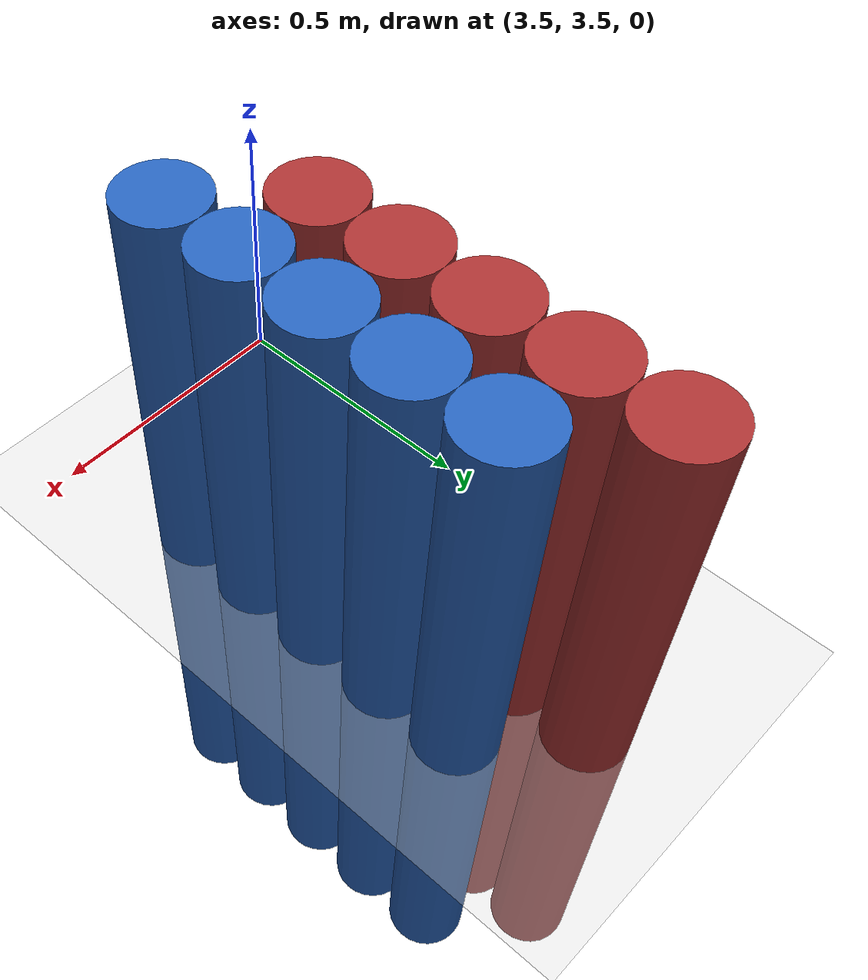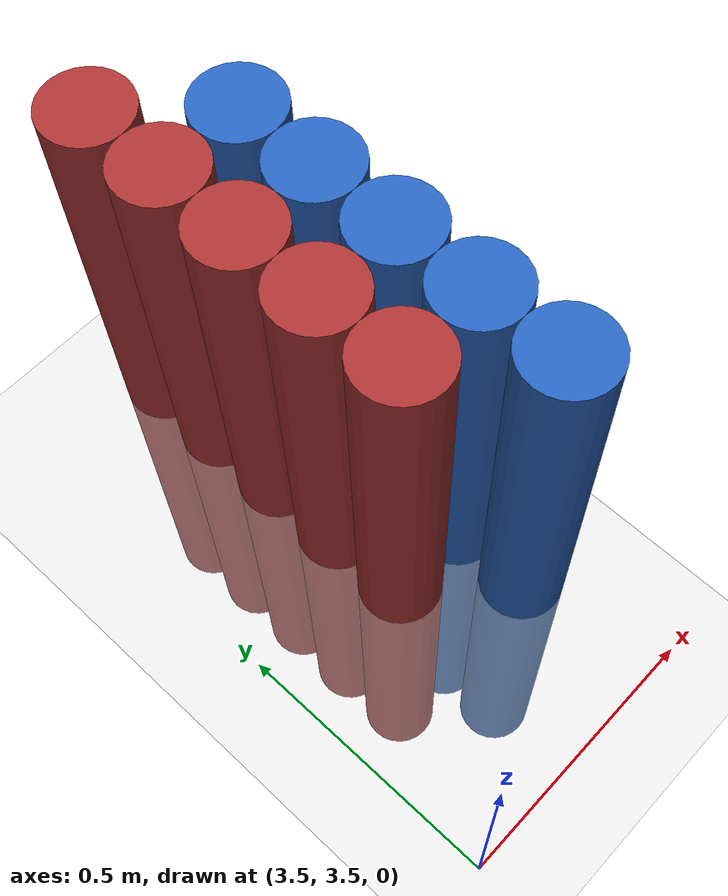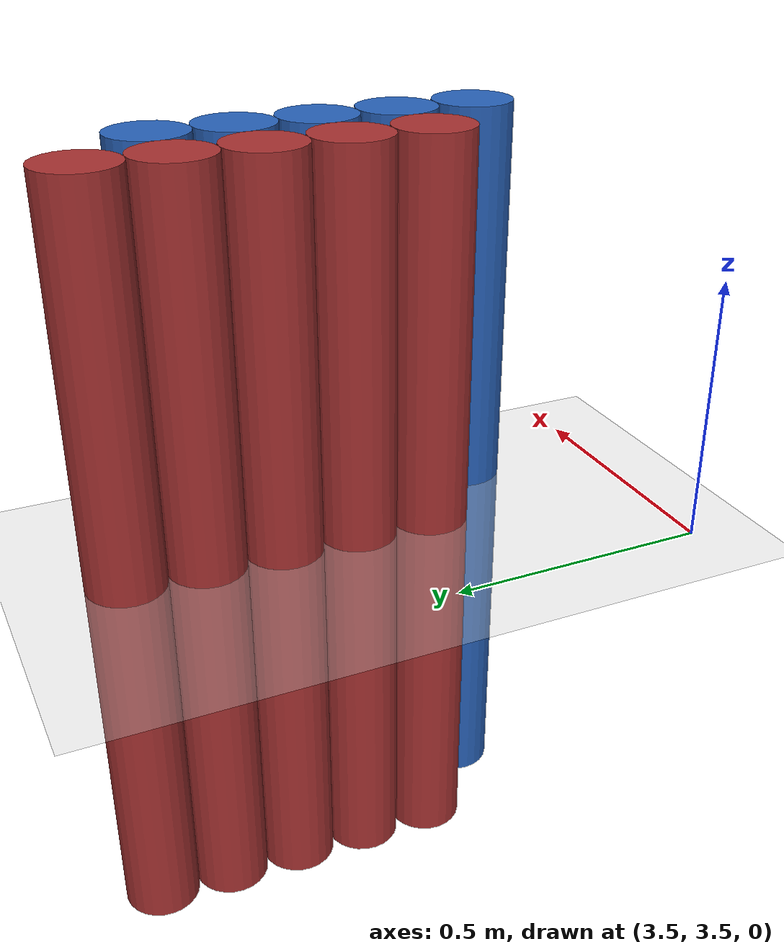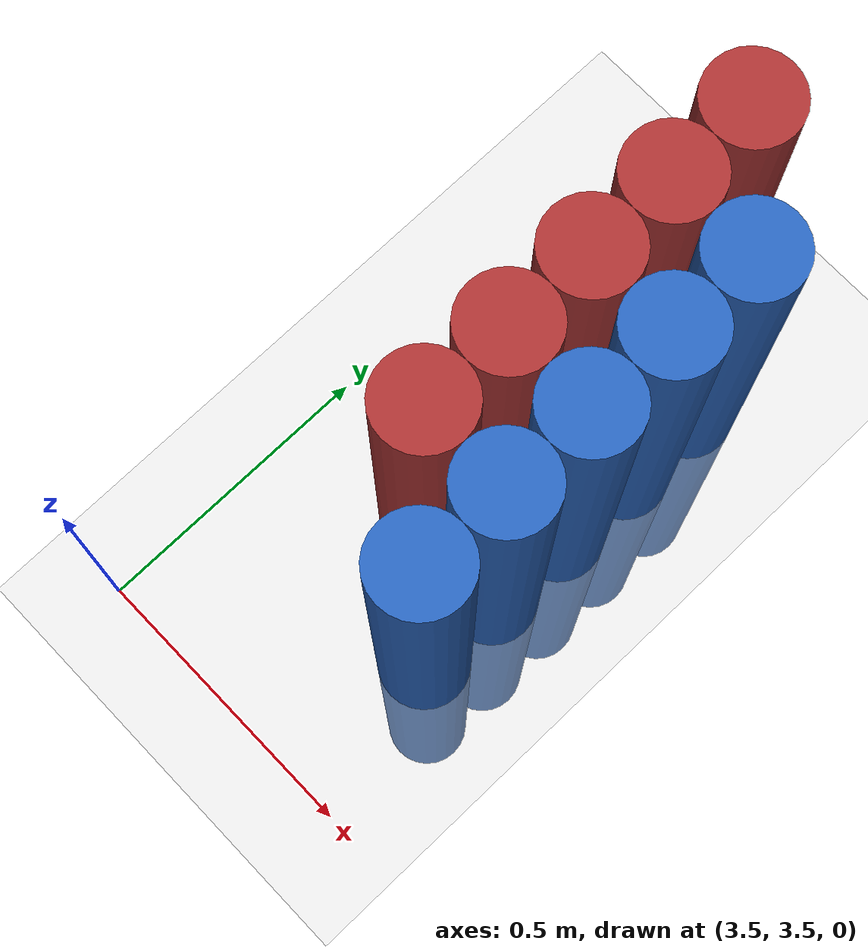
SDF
<sdf version="1.6">
 <world name="default">
  <model name="ground_plane">
   <static>1</static>
   <link name="link">
    <collision name="collision">
     <geometry><plane><normal>0 0 1</normal><size>100 100</size></plane></geometry>
     <surface><friction><ode><mu>100</mu><mu2>50</mu2></ode></friction></surface>
    </collision>
    <visual name="visual">
     <cast_shadows>0</cast_shadows>
     <geometry><plane><normal>0 0 1</normal><size>100 100</size></plane></geometry>
     <material>
      <script><uri>file://media/materials/scripts/gazebo.material</uri><name>Gazebo/Grey</name></script>
     </material>
    </visual>
   </link>
  </model>
  <model name="unit_cylinder_166">
   <static>1</static>
   <pose>3.925000 3.925000 0.000000 0.000000 0.000000 0.000000</pose>
   <link name="link">
    <inertial>
     <mass>1</mass>
     <inertia><ixx>0.145833</ixx><ixy>0</ixy><ixz>0</ixz><iyy>0.145833</iyy><iyz>0</iyz><izz>0.125</izz></inertia>
    </inertial>
    <collision name="collision">
     <geometry><cylinder><radius>0.075000</radius><length>1.5</length></cylinder></geometry>
    </collision>
    <visual name="visual">
     <geometry><cylinder><radius>0.075000</radius><length>1.5</length></cylinder></geometry>
     <material>
      <ambient>0.152000 0.379000 0.720000 1</ambient>
      <diffuse>0.152000 0.379000 0.720000 1</diffuse>
     </material>
     <material>
      <script><name>Gazebo/Grey</name><uri>file://media/materials/scripts/gazebo.material</uri></script>
     </material>
    </visual>
   </link>
  </model>
  <model name="unit_cylinder_168">
   <static>1</static>
   <pose>3.925000 4.075000 0.000000 0.000000 0.000000 0.000000</pose>
   <link name="link">
    <inertial>
     <mass>1</mass>
     <inertia><ixx>0.145833</ixx><ixy>0</ixy><ixz>0</ixz><iyy>0.145833</iyy><iyz>0</iyz><izz>0.125</izz></inertia>
    </inertial>
    <collision name="collision">
     <geometry><cylinder><radius>0.075000</radius><length>1.5</length></cylinder></geometry>
    </collision>
    <visual name="visual">
     <geometry><cylinder><radius>0.075000</radius><length>1.5</length></cylinder></geometry>
     <material>
      <ambient>0.152000 0.379000 0.720000 1</ambient>
      <diffuse>0.152000 0.379000 0.720000 1</diffuse>
     </material>
     <material>
      <script><name>Gazebo/Grey</name><uri>file://media/materials/scripts/gazebo.material</uri></script>
     </material>
    </visual>
   </link>
  </model>
  <model name="unit_cylinder_170">
   <static>1</static>
   <pose>3.925000 4.225000 0.000000 0.000000 0.000000 0.000000</pose>
   <link name="link">
    <inertial>
     <mass>1</mass>
     <inertia><ixx>0.145833</ixx><ixy>0</ixy><ixz>0</ixz><iyy>0.145833</iyy><iyz>0</iyz><izz>0.125</izz></inertia>
    </inertial>
    <collision name="collision">
     <geometry><cylinder><radius>0.075000</radius><length>1.5</length></cylinder></geometry>
    </collision>
    <visual name="visual">
     <geometry><cylinder><radius>0.075000</radius><length>1.5</length></cylinder></geometry>
     <material>
      <ambient>0.152000 0.379000 0.720000 1</ambient>
      <diffuse>0.152000 0.379000 0.720000 1</diffuse>
     </material>
     <material>
      <script><name>Gazebo/Grey</name><uri>file://media/materials/scripts/gazebo.material</uri></script>
     </material>
    </visual>
   </link>
  </model>
  <model name="unit_cylinder_172">
   <static>1</static>
   <pose>3.925000 4.375000 0.000000 0.000000 0.000000 0.000000</pose>
   <link name="link">
    <inertial>
     <mass>1</mass>
     <inertia><ixx>0.145833</ixx><ixy>0</ixy><ixz>0</ixz><iyy>0.145833</iyy><iyz>0</iyz><izz>0.125</izz></inertia>
    </inertial>
    <collision name="collision">
     <geometry><cylinder><radius>0.075000</radius><length>1.5</length></cylinder></geometry>
    </collision>
    <visual name="visual">
     <geometry><cylinder><radius>0.075000</radius><length>1.5</length></cylinder></geometry>
     <material>
      <ambient>0.152000 0.379000 0.720000 1</ambient>
      <diffuse>0.152000 0.379000 0.720000 1</diffuse>
     </material>
     <material>
      <script><name>Gazebo/Grey</name><uri>file://media/materials/scripts/gazebo.material</uri></script>
     </material>
    </visual>
   </link>
  </model>
  <model name="unit_cylinder_377">
   <static>1</static>
   <pose>3.775000 3.925000 0.000000 0.000000 0.000000 0.000000</pose>
   <link name="link">
    <inertial>
     <mass>1</mass>
     <inertia><ixx>0.145833</ixx><ixy>0</ixy><ixz>0</ixz><iyy>0.145833</iyy><iyz>0</iyz><izz>0.125</izz></inertia>
    </inertial>
    <collision name="collision">
     <geometry><cylinder><radius>0.075000</radius><length>1.5</length></cylinder></geometry>
    </collision>
    <visual name="visual">
     <geometry><cylinder><radius>0.075000</radius><length>1.5</length></cylinder></geometry>
     <material>
      <ambient>0.648000 0.192000 0.192000 1</ambient>
      <diffuse>0.648000 0.192000 0.192000 1</diffuse>
     </material>
     <material>
      <script><name>Gazebo/Grey</name><uri>file://media/materials/scripts/gazebo.material</uri></script>
     </material>
    </visual>
   </link>
  </model>
  <model name="unit_cylinder_378">
   <static>1</static>
   <pose>3.775000 4.075000 0.000000 0.000000 0.000000 0.000000</pose>
   <link name="link">
    <inertial>
     <mass>1</mass>
     <inertia><ixx>0.145833</ixx><ixy>0</ixy><ixz>0</ixz><iyy>0.145833</iyy><iyz>0</iyz><izz>0.125</izz></inertia>
    </inertial>
    <collision name="collision">
     <geometry><cylinder><radius>0.075000</radius><length>1.5</length></cylinder></geometry>
    </collision>
    <visual name="visual">
     <geometry><cylinder><radius>0.075000</radius><length>1.5</length></cylinder></geometry>
     <material>
      <ambient>0.648000 0.192000 0.192000 1</ambient>
      <diffuse>0.648000 0.192000 0.192000 1</diffuse>
     </material>
     <material>
      <script><name>Gazebo/Grey</name><uri>file://media/materials/scripts/gazebo.material</uri></script>
     </material>
    </visual>
   </link>
  </model>
  <model name="unit_cylinder_379">
   <static>1</static>
   <pose>3.775000 4.225000 0.000000 0.000000 0.000000 0.000000</pose>
   <link name="link">
    <inertial>
     <mass>1</mass>
     <inertia><ixx>0.145833</ixx><ixy>0</ixy><ixz>0</ixz><iyy>0.145833</iyy><iyz>0</iyz><izz>0.125</izz></inertia>
    </inertial>
    <collision name="collision">
     <geometry><cylinder><radius>0.075000</radius><length>1.5</length></cylinder></geometry>
    </collision>
    <visual name="visual">
     <geometry><cylinder><radius>0.075000</radius><length>1.5</length></cylinder></geometry>
     <material>
      <ambient>0.648000 0.192000 0.192000 1</ambient>
      <diffuse>0.648000 0.192000 0.192000 1</diffuse>
     </material>
     <material>
      <script><name>Gazebo/Grey</name><uri>file://media/materials/scripts/gazebo.material</uri></script>
     </material>
    </visual>
   </link>
  </model>
  <model name="unit_cylinder_380">
   <static>1</static>
   <pose>3.775000 4.375000 0.000000 0.000000 0.000000 0.000000</pose>
   <link name="link">
    <inertial>
     <mass>1</mass>
     <inertia><ixx>0.145833</ixx><ixy>0</ixy><ixz>0</ixz><iyy>0.145833</iyy><iyz>0</iyz><izz>0.125</izz></inertia>
    </inertial>
    <collision name="collision">
     <geometry><cylinder><radius>0.075000</radius><length>1.5</length></cylinder></geometry>
    </collision>
    <visual name="visual">
     <geometry><cylinder><radius>0.075000</radius><length>1.5</length></cylinder></geometry>
     <material>
      <ambient>0.648000 0.192000 0.192000 1</ambient>
      <diffuse>0.648000 0.192000 0.192000 1</diffuse>
     </material>
     <material>
      <script><name>Gazebo/Grey</name><uri>file://media/materials/scripts/gazebo.material</uri></script>
     </material>
    </visual>
   </link>
  </model>
  <model name="unit_cylinder_381">
   <static>1</static>
   <pose>3.775000 4.525000 0.000000 0.000000 0.000000 0.000000</pose>
   <link name="link">
    <inertial>
     <mass>1</mass>
     <inertia><ixx>0.145833</ixx><ixy>0</ixy><ixz>0</ixz><iyy>0.145833</iyy><iyz>0</iyz><izz>0.125</izz></inertia>
    </inertial>
    <collision name="collision">
     <geometry><cylinder><radius>0.075000</radius><length>1.5</length></cylinder></geometry>
    </collision>
    <visual name="visual">
     <geometry><cylinder><radius>0.075000</radius><length>1.5</length></cylinder></geometry>
     <material>
      <ambient>0.648000 0.192000 0.192000 1</ambient>
      <diffuse>0.648000 0.192000 0.192000 1</diffuse>
     </material>
     <material>
      <script><name>Gazebo/Grey</name><uri>file://media/materials/scripts/gazebo.material</uri></script>
     </material>
    </visual>
   </link>
  </model>
  <model name="unit_cylinder_422">
   <static>1</static>
   <pose>3.925000 3.775000 0.000000 0.000000 0.000000 0.000000</pose>
   <link name="link">
    <inertial>
     <mass>1</mass>
     <inertia><ixx>0.145833</ixx><ixy>0</ixy><ixz>0</ixz><iyy>0.145833</iyy><iyz>0</iyz><izz>0.125</izz></inertia>
    </inertial>
    <collision name="collision">
     <geometry><cylinder><radius>0.075000</radius><length>1.5</length></cylinder></geometry>
    </collision>
    <visual name="visual">
     <geometry><cylinder><radius>0.075000</radius><length>1.5</length></cylinder></geometry>
     <material>
      <ambient>0.152000 0.379000 0.720000 1</ambient>
      <diffuse>0.152000 0.379000 0.720000 1</diffuse>
     </material>
     <material>
      <script><name>Gazebo/Grey</name><uri>file://media/materials/scripts/gazebo.material</uri></script>
     </material>
    </visual>
   </link>
  </model>
  <model name="unit_cylinder_423">
   <static>1</static>
   <pose>3.925000 3.925000 0.000000 0.000000 0.000000 0.000000</pose>
   <link name="link">
    <inertial>
     <mass>1</mass>
     <inertia><ixx>0.145833</ixx><ixy>0</ixy><ixz>0</ixz><iyy>0.145833</iyy><iyz>0</iyz><izz>0.125</izz></inertia>
    </inertial>
    <collision name="collision">
     <geometry><cylinder><radius>0.075000</radius><length>1.5</length></cylinder></geometry>
    </collision>
    <visual name="visual">
     <geometry><cylinder><radius>0.075000</radius><length>1.5</length></cylinder></geometry>
     <material>
      <ambient>0.152000 0.379000 0.720000 1</ambient>
      <diffuse>0.152000 0.379000 0.720000 1</diffuse>
     </material>
     <material>
      <script><name>Gazebo/Grey</name><uri>file://media/materials/scripts/gazebo.material</uri></script>
     </material>
    </visual>
   </link>
  </model>
  <model name="unit_cylinder_424">
   <static>1</static>
   <pose>3.925000 4.075000 0.000000 0.000000 0.000000 0.000000</pose>
   <link name="link">
    <inertial>
     <mass>1</mass>
     <inertia><ixx>0.145833</ixx><ixy>0</ixy><ixz>0</ixz><iyy>0.145833</iyy><iyz>0</iyz><izz>0.125</izz></inertia>
    </inertial>
    <collision name="collision">
     <geometry><cylinder><radius>0.075000</radius><length>1.5</length></cylinder></geometry>
    </collision>
    <visual name="visual">
     <geometry><cylinder><radius>0.075000</radius><length>1.5</length></cylinder></geometry>
     <material>
      <ambient>0.152000 0.379000 0.720000 1</ambient>
      <diffuse>0.152000 0.379000 0.720000 1</diffuse>
     </material>
     <material>
      <script><name>Gazebo/Grey</name><uri>file://media/materials/scripts/gazebo.material</uri></script>
     </material>
    </visual>
   </link>
  </model>
  <model name="unit_cylinder_425">
   <static>1</static>
   <pose>3.925000 4.225000 0.000000 0.000000 0.000000 0.000000</pose>
   <link name="link">
    <inertial>
     <mass>1</mass>
     <inertia><ixx>0.145833</ixx><ixy>0</ixy><ixz>0</ixz><iyy>0.145833</iyy><iyz>0</iyz><izz>0.125</izz></inertia>
    </inertial>
    <collision name="collision">
     <geometry><cylinder><radius>0.075000</radius><length>1.5</length></cylinder></geometry>
    </collision>
    <visual name="visual">
     <geometry><cylinder><radius>0.075000</radius><length>1.5</length></cylinder></geometry>
     <material>
      <ambient>0.152000 0.379000 0.720000 1</ambient>
      <diffuse>0.152000 0.379000 0.720000 1</diffuse>
     </material>
     <material>
      <script><name>Gazebo/Grey</name><uri>file://media/materials/scripts/gazebo.material</uri></script>
     </material>
    </visual>
   </link>
  </model>
  <model name="unit_cylinder_426">
   <static>1</static>
   <pose>3.925000 4.375000 0.000000 0.000000 0.000000 0.000000</pose>
   <link name="link">
    <inertial>
     <mass>1</mass>
     <inertia><ixx>0.145833</ixx><ixy>0</ixy><ixz>0</ixz><iyy>0.145833</iyy><iyz>0</iyz><izz>0.125</izz></inertia>
    </inertial>
    <collision name="collision">
     <geometry><cylinder><radius>0.075000</radius><length>1.5</length></cylinder></geometry>
    </collision>
    <visual name="visual">
     <geometry><cylinder><radius>0.075000</radius><length>1.5</length></cylinder></geometry>
     <material>
      <ambient>0.152000 0.379000 0.720000 1</ambient>
      <diffuse>0.152000 0.379000 0.720000 1</diffuse>
     </material>
     <material>
      <script><name>Gazebo/Grey</name><uri>file://media/materials/scripts/gazebo.material</uri></script>
     </material>
    </visual>
   </link>
  </model>
 </world>
</sdf>
